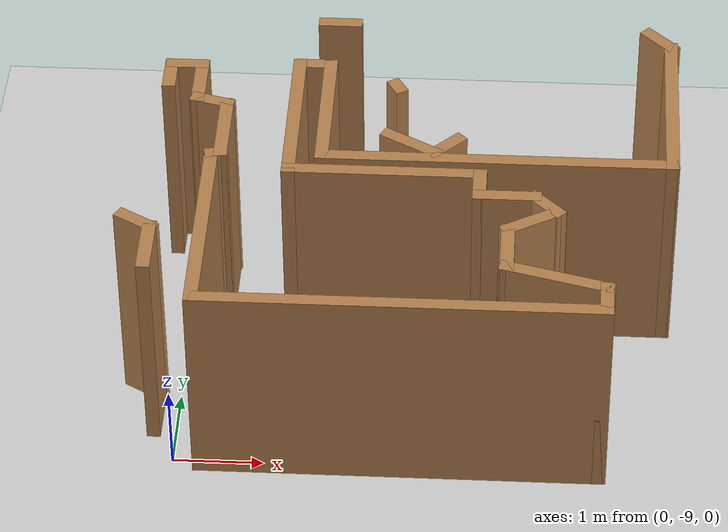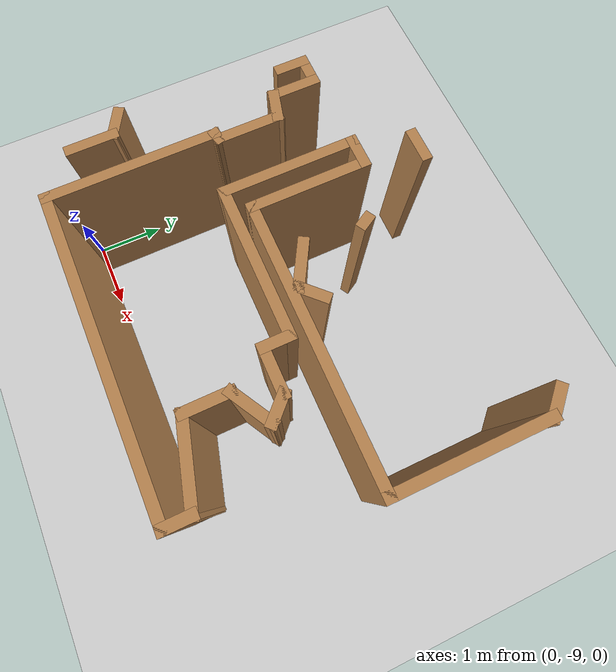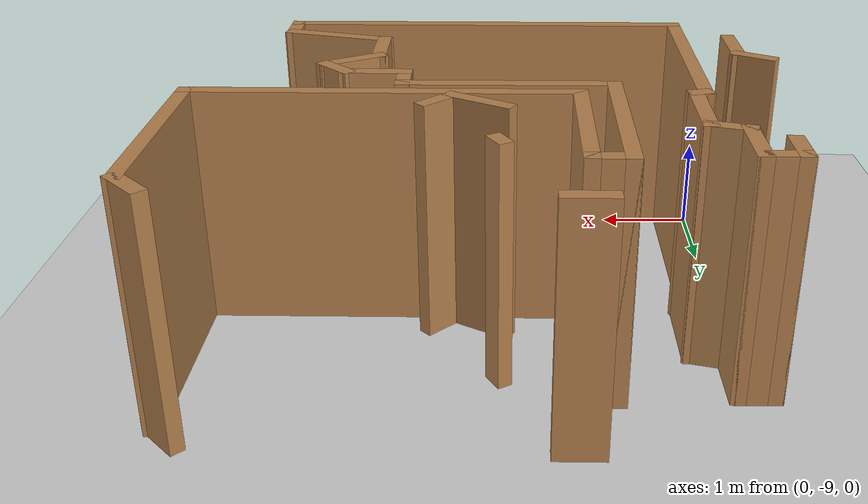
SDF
<sdf version="1.6">
 <world name="default">
  <model name="ground_plane">
   <static>1</static>
   <link name="link">
    <collision name="collision">
     <geometry><plane><normal>0 0 1</normal><size>100 100</size></plane></geometry>
     <surface><friction><ode><mu>100</mu><mu2>50</mu2></ode></friction></surface>
    </collision>
    <visual name="visual">
     <cast_shadows>0</cast_shadows>
     <geometry><plane><normal>0 0 1</normal><size>100 100</size></plane></geometry>
     <material>
      <script><uri>file://media/materials/scripts/gazebo.material</uri><name>Gazebo/Grey</name></script>
     </material>
    </visual>
   </link>
  </model>
  <model name="map_31">
   <link name="Wall_163">
    <pose>1.69247 -5.1413 0 0 0 -1.0472</pose>
    <visual name="Wall_163_Visual">
     <pose>0 0 1.25 0 -0 0</pose>
     <geometry><box><size>0.25 0.15 2.5</size></box></geometry>
     <material>
      <script><uri>file://media/materials/scripts/gazebo.material</uri><name>Gazebo/Wood</name></script>
      <ambient>1 1 1 1</ambient>
      <shader type="pixel"/>
     </material>
     <meta><layer>0</layer></meta>
    </visual>
    <collision name="Wall_163_Collision">
     <pose>0 0 1.25 0 -0 0</pose>
     <geometry><box><size>0.25 0.15 2.5</size></box></geometry>
     <surface>
      <friction>
       <ode><mu>1</mu><mu2>1</mu2><fdir1>0 0 0</fdir1><slip1>0</slip1><slip2>0</slip2></ode>
       <torsional>
        <coefficient>1</coefficient>
        <patch_radius>0</patch_radius>
        <surface_radius>0</surface_radius>
        <use_patch_radius>1</use_patch_radius>
        <ode><slip>0</slip></ode>
       </torsional>
      </friction>
      <bounce><restitution_coefficient>0</restitution_coefficient><threshold>1e+06</threshold></bounce>
      <contact>
       <collide_without_contact>0</collide_without_contact>
       <collide_without_contact_bitmask>1</collide_without_contact_bitmask>
       <collide_bitmask>1</collide_bitmask>
       <ode>
        <soft_cfm>0</soft_cfm>
        <soft_erp>0.2</soft_erp>
        <kp>1e+13</kp>
        <kd>1</kd>
        <max_vel>0.01</max_vel>
        <min_depth>0</min_depth>
       </ode>
       <bullet>
        <split_impulse>1</split_impulse>
        <split_impulse_penetration_threshold>-0.01</split_impulse_penetration_threshold>
        <soft_cfm>0</soft_cfm>
        <soft_erp>0.2</soft_erp>
        <kp>1e+13</kp>
        <kd>1</kd>
       </bullet>
      </contact>
     </surface>
    </collision>
   </link>
   <link name="Wall_165">
    <pose>1.89668 -6.13512 0 0 0 -0.523599</pose>
    <visual name="Wall_165_Visual">
     <pose>0 0 1.25 0 -0 0</pose>
     <geometry><box><size>0.75 0.15 2.5</size></box></geometry>
     <material>
      <script><uri>file://media/materials/scripts/gazebo.material</uri><name>Gazebo/Wood</name></script>
      <ambient>1 1 1 1</ambient>
      <shader type="pixel"/>
     </material>
     <meta><layer>0</layer></meta>
    </visual>
    <collision name="Wall_165_Collision">
     <pose>0 0 1.25 0 -0 0</pose>
     <geometry><box><size>0.75 0.15 2.5</size></box></geometry>
     <surface>
      <friction>
       <ode><mu>1</mu><mu2>1</mu2><fdir1>0 0 0</fdir1><slip1>0</slip1><slip2>0</slip2></ode>
       <torsional>
        <coefficient>1</coefficient>
        <patch_radius>0</patch_radius>
        <surface_radius>0</surface_radius>
        <use_patch_radius>1</use_patch_radius>
        <ode><slip>0</slip></ode>
       </torsional>
      </friction>
      <bounce><restitution_coefficient>0</restitution_coefficient><threshold>1e+06</threshold></bounce>
      <contact>
       <collide_without_contact>0</collide_without_contact>
       <collide_without_contact_bitmask>1</collide_without_contact_bitmask>
       <collide_bitmask>1</collide_bitmask>
       <ode>
        <soft_cfm>0</soft_cfm>
        <soft_erp>0.2</soft_erp>
        <kp>1e+13</kp>
        <kd>1</kd>
        <max_vel>0.01</max_vel>
        <min_depth>0</min_depth>
       </ode>
       <bullet>
        <split_impulse>1</split_impulse>
        <split_impulse_penetration_threshold>-0.01</split_impulse_penetration_threshold>
        <soft_cfm>0</soft_cfm>
        <soft_erp>0.2</soft_erp>
        <kp>1e+13</kp>
        <kd>1</kd>
       </bullet>
      </contact>
     </surface>
    </collision>
   </link>
   <link name="Wall_166">
    <pose>2.28024 -6.16137 0 0 -0 0.785398</pose>
    <visual name="Wall_166_Visual">
     <pose>0 0 1.25 0 -0 0</pose>
     <geometry><box><size>0.5 0.15 2.5</size></box></geometry>
     <material>
      <script><uri>file://media/materials/scripts/gazebo.material</uri><name>Gazebo/Wood</name></script>
      <ambient>1 1 1 1</ambient>
      <shader type="pixel"/>
     </material>
     <meta><layer>0</layer></meta>
    </visual>
    <collision name="Wall_166_Collision">
     <pose>0 0 1.25 0 -0 0</pose>
     <geometry><box><size>0.5 0.15 2.5</size></box></geometry>
     <surface>
      <friction>
       <ode><mu>1</mu><mu2>1</mu2><fdir1>0 0 0</fdir1><slip1>0</slip1><slip2>0</slip2></ode>
       <torsional>
        <coefficient>1</coefficient>
        <patch_radius>0</patch_radius>
        <surface_radius>0</surface_radius>
        <use_patch_radius>1</use_patch_radius>
        <ode><slip>0</slip></ode>
       </torsional>
      </friction>
      <bounce><restitution_coefficient>0</restitution_coefficient><threshold>1e+06</threshold></bounce>
      <contact>
       <collide_without_contact>0</collide_without_contact>
       <collide_without_contact_bitmask>1</collide_without_contact_bitmask>
       <collide_bitmask>1</collide_bitmask>
       <ode>
        <soft_cfm>0</soft_cfm>
        <soft_erp>0.2</soft_erp>
        <kp>1e+13</kp>
        <kd>1</kd>
        <max_vel>0.01</max_vel>
        <min_depth>0</min_depth>
       </ode>
       <bullet>
        <split_impulse>1</split_impulse>
        <split_impulse_penetration_threshold>-0.01</split_impulse_penetration_threshold>
        <soft_cfm>0</soft_cfm>
        <soft_erp>0.2</soft_erp>
        <kp>1e+13</kp>
        <kd>1</kd>
       </bullet>
      </contact>
     </surface>
    </collision>
   </link>
   <link name="Wall_47">
    <pose>-0.840725 -7.95928 0 0 -0 1.5708</pose>
    <visual name="Wall_47_Visual">
     <pose>0 0 1.25 0 -0 0</pose>
     <geometry><box><size>0.75 0.15 2.5</size></box></geometry>
     <material>
      <script><uri>file://media/materials/scripts/gazebo.material</uri><name>Gazebo/Wood</name></script>
      <ambient>1 1 1 1</ambient>
      <shader type="pixel"/>
     </material>
     <meta><layer>0</layer></meta>
    </visual>
    <collision name="Wall_47_Collision">
     <pose>0 0 1.25 0 -0 0</pose>
     <geometry><box><size>0.75 0.15 2.5</size></box></geometry>
     <surface>
      <friction>
       <ode><mu>1</mu><mu2>1</mu2><fdir1>0 0 0</fdir1><slip1>0</slip1><slip2>0</slip2></ode>
       <torsional>
        <coefficient>1</coefficient>
        <patch_radius>0</patch_radius>
        <surface_radius>0</surface_radius>
        <use_patch_radius>1</use_patch_radius>
        <ode><slip>0</slip></ode>
       </torsional>
      </friction>
      <bounce><restitution_coefficient>0</restitution_coefficient><threshold>1e+06</threshold></bounce>
      <contact>
       <collide_without_contact>0</collide_without_contact>
       <collide_without_contact_bitmask>1</collide_without_contact_bitmask>
       <collide_bitmask>1</collide_bitmask>
       <ode>
        <soft_cfm>0</soft_cfm>
        <soft_erp>0.2</soft_erp>
        <kp>1e+13</kp>
        <kd>1</kd>
        <max_vel>0.01</max_vel>
        <min_depth>0</min_depth>
       </ode>
       <bullet>
        <split_impulse>1</split_impulse>
        <split_impulse_penetration_threshold>-0.01</split_impulse_penetration_threshold>
        <soft_cfm>0</soft_cfm>
        <soft_erp>0.2</soft_erp>
        <kp>1e+13</kp>
        <kd>1</kd>
       </bullet>
      </contact>
     </surface>
    </collision>
   </link>
   <link name="Wall_48">
    <pose>-0.99228 -7.57178 0 0 -0 2.61799</pose>
    <visual name="Wall_48_Visual">
     <pose>0 0 1.25 0 -0 0</pose>
     <geometry><box><size>0.5 0.15 2.5</size></box></geometry>
     <material>
      <script><uri>file://media/materials/scripts/gazebo.material</uri><name>Gazebo/Wood</name></script>
      <ambient>1 1 1 1</ambient>
      <shader type="pixel"/>
     </material>
     <meta><layer>0</layer></meta>
    </visual>
    <collision name="Wall_48_Collision">
     <pose>0 0 1.25 0 -0 0</pose>
     <geometry><box><size>0.5 0.15 2.5</size></box></geometry>
     <surface>
      <friction>
       <ode><mu>1</mu><mu2>1</mu2><fdir1>0 0 0</fdir1><slip1>0</slip1><slip2>0</slip2></ode>
       <torsional>
        <coefficient>1</coefficient>
        <patch_radius>0</patch_radius>
        <surface_radius>0</surface_radius>
        <use_patch_radius>1</use_patch_radius>
        <ode><slip>0</slip></ode>
       </torsional>
      </friction>
      <bounce><restitution_coefficient>0</restitution_coefficient><threshold>1e+06</threshold></bounce>
      <contact>
       <collide_without_contact>0</collide_without_contact>
       <collide_without_contact_bitmask>1</collide_without_contact_bitmask>
       <collide_bitmask>1</collide_bitmask>
       <ode>
        <soft_cfm>0</soft_cfm>
        <soft_erp>0.2</soft_erp>
        <kp>1e+13</kp>
        <kd>1</kd>
        <max_vel>0.01</max_vel>
        <min_depth>0</min_depth>
       </ode>
       <bullet>
        <split_impulse>1</split_impulse>
        <split_impulse_penetration_threshold>-0.01</split_impulse_penetration_threshold>
        <soft_cfm>0</soft_cfm>
        <soft_erp>0.2</soft_erp>
        <kp>1e+13</kp>
        <kd>1</kd>
       </bullet>
      </contact>
     </surface>
    </collision>
   </link>
   <link name="Wall_54">
    <pose>-0.881908 -5.01869 0 0 -0 1.5708</pose>
    <visual name="Wall_54_Visual">
     <pose>0 0 1.25 0 -0 0</pose>
     <geometry><box><size>0.5 0.15 2.5</size></box></geometry>
     <material>
      <script><uri>file://media/materials/scripts/gazebo.material</uri><name>Gazebo/Wood</name></script>
      <ambient>1 1 1 1</ambient>
      <shader type="pixel"/>
     </material>
     <meta><layer>0</layer></meta>
    </visual>
    <collision name="Wall_54_Collision">
     <pose>0 0 1.25 0 -0 0</pose>
     <geometry><box><size>0.5 0.15 2.5</size></box></geometry>
     <surface>
      <friction>
       <ode><mu>1</mu><mu2>1</mu2><fdir1>0 0 0</fdir1><slip1>0</slip1><slip2>0</slip2></ode>
       <torsional>
        <coefficient>1</coefficient>
        <patch_radius>0</patch_radius>
        <surface_radius>0</surface_radius>
        <use_patch_radius>1</use_patch_radius>
        <ode><slip>0</slip></ode>
       </torsional>
      </friction>
      <bounce><restitution_coefficient>0</restitution_coefficient><threshold>1e+06</threshold></bounce>
      <contact>
       <collide_without_contact>0</collide_without_contact>
       <collide_without_contact_bitmask>1</collide_without_contact_bitmask>
       <collide_bitmask>1</collide_bitmask>
       <ode>
        <soft_cfm>0</soft_cfm>
        <soft_erp>0.2</soft_erp>
        <kp>1e+13</kp>
        <kd>1</kd>
        <max_vel>0.01</max_vel>
        <min_depth>0</min_depth>
       </ode>
       <bullet>
        <split_impulse>1</split_impulse>
        <split_impulse_penetration_threshold>-0.01</split_impulse_penetration_threshold>
        <soft_cfm>0</soft_cfm>
        <soft_erp>0.2</soft_erp>
        <kp>1e+13</kp>
        <kd>1</kd>
       </bullet>
      </contact>
     </surface>
    </collision>
   </link>
   <link name="Wall_55">
    <pose>-0.706908 -4.84369 0 0 -0 0</pose>
    <visual name="Wall_55_Visual">
     <pose>0 0 1.25 0 -0 0</pose>
     <geometry><box><size>0.5 0.15 2.5</size></box></geometry>
     <material>
      <script><uri>file://media/materials/scripts/gazebo.material</uri><name>Gazebo/Wood</name></script>
      <ambient>1 1 1 1</ambient>
      <shader type="pixel"/>
     </material>
     <meta><layer>0</layer></meta>
    </visual>
    <collision name="Wall_55_Collision">
     <pose>0 0 1.25 0 -0 0</pose>
     <geometry><box><size>0.5 0.15 2.5</size></box></geometry>
     <surface>
      <friction>
       <ode><mu>1</mu><mu2>1</mu2><fdir1>0 0 0</fdir1><slip1>0</slip1><slip2>0</slip2></ode>
       <torsional>
        <coefficient>1</coefficient>
        <patch_radius>0</patch_radius>
        <surface_radius>0</surface_radius>
        <use_patch_radius>1</use_patch_radius>
        <ode><slip>0</slip></ode>
       </torsional>
      </friction>
      <bounce><restitution_coefficient>0</restitution_coefficient><threshold>1e+06</threshold></bounce>
      <contact>
       <collide_without_contact>0</collide_without_contact>
       <collide_without_contact_bitmask>1</collide_without_contact_bitmask>
       <collide_bitmask>1</collide_bitmask>
       <ode>
        <soft_cfm>0</soft_cfm>
        <soft_erp>0.2</soft_erp>
        <kp>1e+13</kp>
        <kd>1</kd>
        <max_vel>0.01</max_vel>
        <min_depth>0</min_depth>
       </ode>
       <bullet>
        <split_impulse>1</split_impulse>
        <split_impulse_penetration_threshold>-0.01</split_impulse_penetration_threshold>
        <soft_cfm>0</soft_cfm>
        <soft_erp>0.2</soft_erp>
        <kp>1e+13</kp>
        <kd>1</kd>
       </bullet>
      </contact>
     </surface>
    </collision>
   </link>
   <link name="Wall_56">
    <pose>-0.531908 -5.14369 0 0 0 -1.5708</pose>
    <visual name="Wall_56_Visual">
     <pose>0 0 1.25 0 -0 0</pose>
     <geometry><box><size>0.75 0.15 2.5</size></box></geometry>
     <material>
      <script><uri>file://media/materials/scripts/gazebo.material</uri><name>Gazebo/Wood</name></script>
      <ambient>1 1 1 1</ambient>
      <shader type="pixel"/>
     </material>
     <meta><layer>0</layer></meta>
    </visual>
    <collision name="Wall_56_Collision">
     <pose>0 0 1.25 0 -0 0</pose>
     <geometry><box><size>0.75 0.15 2.5</size></box></geometry>
     <surface>
      <friction>
       <ode><mu>1</mu><mu2>1</mu2><fdir1>0 0 0</fdir1><slip1>0</slip1><slip2>0</slip2></ode>
       <torsional>
        <coefficient>1</coefficient>
        <patch_radius>0</patch_radius>
        <surface_radius>0</surface_radius>
        <use_patch_radius>1</use_patch_radius>
        <ode><slip>0</slip></ode>
       </torsional>
      </friction>
      <bounce><restitution_coefficient>0</restitution_coefficient><threshold>1e+06</threshold></bounce>
      <contact>
       <collide_without_contact>0</collide_without_contact>
       <collide_without_contact_bitmask>1</collide_without_contact_bitmask>
       <collide_bitmask>1</collide_bitmask>
       <ode>
        <soft_cfm>0</soft_cfm>
        <soft_erp>0.2</soft_erp>
        <kp>1e+13</kp>
        <kd>1</kd>
        <max_vel>0.01</max_vel>
        <min_depth>0</min_depth>
       </ode>
       <bullet>
        <split_impulse>1</split_impulse>
        <split_impulse_penetration_threshold>-0.01</split_impulse_penetration_threshold>
        <soft_cfm>0</soft_cfm>
        <soft_erp>0.2</soft_erp>
        <kp>1e+13</kp>
        <kd>1</kd>
       </bullet>
      </contact>
     </surface>
    </collision>
   </link>
   <link name="Wall_57">
    <pose>-0.362871 -5.48898 0 0 0 -0.261799</pose>
    <visual name="Wall_57_Visual">
     <pose>0 0 1.25 0 -0 0</pose>
     <geometry><box><size>0.5 0.15 2.5</size></box></geometry>
     <material>
      <script><uri>file://media/materials/scripts/gazebo.material</uri><name>Gazebo/Wood</name></script>
      <ambient>1 1 1 1</ambient>
      <shader type="pixel"/>
     </material>
     <meta><layer>0</layer></meta>
    </visual>
    <collision name="Wall_57_Collision">
     <pose>0 0 1.25 0 -0 0</pose>
     <geometry><box><size>0.5 0.15 2.5</size></box></geometry>
     <surface>
      <friction>
       <ode><mu>1</mu><mu2>1</mu2><fdir1>0 0 0</fdir1><slip1>0</slip1><slip2>0</slip2></ode>
       <torsional>
        <coefficient>1</coefficient>
        <patch_radius>0</patch_radius>
        <surface_radius>0</surface_radius>
        <use_patch_radius>1</use_patch_radius>
        <ode><slip>0</slip></ode>
       </torsional>
      </friction>
      <bounce><restitution_coefficient>0</restitution_coefficient><threshold>1e+06</threshold></bounce>
      <contact>
       <collide_without_contact>0</collide_without_contact>
       <collide_without_contact_bitmask>1</collide_without_contact_bitmask>
       <collide_bitmask>1</collide_bitmask>
       <ode>
        <soft_cfm>0</soft_cfm>
        <soft_erp>0.2</soft_erp>
        <kp>1e+13</kp>
        <kd>1</kd>
        <max_vel>0.01</max_vel>
        <min_depth>0</min_depth>
       </ode>
       <bullet>
        <split_impulse>1</split_impulse>
        <split_impulse_penetration_threshold>-0.01</split_impulse_penetration_threshold>
        <soft_cfm>0</soft_cfm>
        <soft_erp>0.2</soft_erp>
        <kp>1e+13</kp>
        <kd>1</kd>
       </bullet>
      </contact>
     </surface>
    </collision>
   </link>
   <link name="Wall_58">
    <pose>-0.193834 -5.95928 0 0 0 -1.5708</pose>
    <visual name="Wall_58_Visual">
     <pose>0 0 1.25 0 -0 0</pose>
     <geometry><box><size>1 0.15 2.5</size></box></geometry>
     <material>
      <script><uri>file://media/materials/scripts/gazebo.material</uri><name>Gazebo/Wood</name></script>
      <ambient>1 1 1 1</ambient>
      <shader type="pixel"/>
     </material>
     <meta><layer>0</layer></meta>
    </visual>
    <collision name="Wall_58_Collision">
     <pose>0 0 1.25 0 -0 0</pose>
     <geometry><box><size>1 0.15 2.5</size></box></geometry>
     <surface>
      <friction>
       <ode><mu>1</mu><mu2>1</mu2><fdir1>0 0 0</fdir1><slip1>0</slip1><slip2>0</slip2></ode>
       <torsional>
        <coefficient>1</coefficient>
        <patch_radius>0</patch_radius>
        <surface_radius>0</surface_radius>
        <use_patch_radius>1</use_patch_radius>
        <ode><slip>0</slip></ode>
       </torsional>
      </friction>
      <bounce><restitution_coefficient>0</restitution_coefficient><threshold>1e+06</threshold></bounce>
      <contact>
       <collide_without_contact>0</collide_without_contact>
       <collide_without_contact_bitmask>1</collide_without_contact_bitmask>
       <collide_bitmask>1</collide_bitmask>
       <ode>
        <soft_cfm>0</soft_cfm>
        <soft_erp>0.2</soft_erp>
        <kp>1e+13</kp>
        <kd>1</kd>
        <max_vel>0.01</max_vel>
        <min_depth>0</min_depth>
       </ode>
       <bullet>
        <split_impulse>1</split_impulse>
        <split_impulse_penetration_threshold>-0.01</split_impulse_penetration_threshold>
        <soft_cfm>0</soft_cfm>
        <soft_erp>0.2</soft_erp>
        <kp>1e+13</kp>
        <kd>1</kd>
       </bullet>
      </contact>
     </surface>
    </collision>
   </link>
   <link name="Wall_59">
    <pose>-0.242131 -6.39722 0 0 0 -2.87979</pose>
    <visual name="Wall_59_Visual">
     <pose>0 0 1.25 0 -0 0</pose>
     <geometry><box><size>0.25 0.15 2.5</size></box></geometry>
     <material>
      <script><uri>file://media/materials/scripts/gazebo.material</uri><name>Gazebo/Wood</name></script>
      <ambient>1 1 1 1</ambient>
      <shader type="pixel"/>
     </material>
     <meta><layer>0</layer></meta>
    </visual>
    <collision name="Wall_59_Collision">
     <pose>0 0 1.25 0 -0 0</pose>
     <geometry><box><size>0.25 0.15 2.5</size></box></geometry>
     <surface>
      <friction>
       <ode><mu>1</mu><mu2>1</mu2><fdir1>0 0 0</fdir1><slip1>0</slip1><slip2>0</slip2></ode>
       <torsional>
        <coefficient>1</coefficient>
        <patch_radius>0</patch_radius>
        <surface_radius>0</surface_radius>
        <use_patch_radius>1</use_patch_radius>
        <ode><slip>0</slip></ode>
       </torsional>
      </friction>
      <bounce><restitution_coefficient>0</restitution_coefficient><threshold>1e+06</threshold></bounce>
      <contact>
       <collide_without_contact>0</collide_without_contact>
       <collide_without_contact_bitmask>1</collide_without_contact_bitmask>
       <collide_bitmask>1</collide_bitmask>
       <ode>
        <soft_cfm>0</soft_cfm>
        <soft_erp>0.2</soft_erp>
        <kp>1e+13</kp>
        <kd>1</kd>
        <max_vel>0.01</max_vel>
        <min_depth>0</min_depth>
       </ode>
       <bullet>
        <split_impulse>1</split_impulse>
        <split_impulse_penetration_threshold>-0.01</split_impulse_penetration_threshold>
        <soft_cfm>0</soft_cfm>
        <soft_erp>0.2</soft_erp>
        <kp>1e+13</kp>
        <kd>1</kd>
       </bullet>
      </contact>
     </surface>
    </collision>
   </link>
   <link name="Wall_60">
    <pose>-0.290427 -7.58516 0 0 0 -1.5708</pose>
    <visual name="Wall_60_Visual">
     <pose>0 0 1.25 0 -0 0</pose>
     <geometry><box><size>2.5 0.15 2.5</size></box></geometry>
     <material>
      <script><uri>file://media/materials/scripts/gazebo.material</uri><name>Gazebo/Wood</name></script>
      <ambient>1 1 1 1</ambient>
      <shader type="pixel"/>
     </material>
     <meta><layer>0</layer></meta>
    </visual>
    <collision name="Wall_60_Collision">
     <pose>0 0 1.25 0 -0 0</pose>
     <geometry><box><size>2.5 0.15 2.5</size></box></geometry>
     <surface>
      <friction>
       <ode><mu>1</mu><mu2>1</mu2><fdir1>0 0 0</fdir1><slip1>0</slip1><slip2>0</slip2></ode>
       <torsional>
        <coefficient>1</coefficient>
        <patch_radius>0</patch_radius>
        <surface_radius>0</surface_radius>
        <use_patch_radius>1</use_patch_radius>
        <ode><slip>0</slip></ode>
       </torsional>
      </friction>
      <bounce><restitution_coefficient>0</restitution_coefficient><threshold>1e+06</threshold></bounce>
      <contact>
       <collide_without_contact>0</collide_without_contact>
       <collide_without_contact_bitmask>1</collide_without_contact_bitmask>
       <collide_bitmask>1</collide_bitmask>
       <ode>
        <soft_cfm>0</soft_cfm>
        <soft_erp>0.2</soft_erp>
        <kp>1e+13</kp>
        <kd>1</kd>
        <max_vel>0.01</max_vel>
        <min_depth>0</min_depth>
       </ode>
       <bullet>
        <split_impulse>1</split_impulse>
        <split_impulse_penetration_threshold>-0.01</split_impulse_penetration_threshold>
        <soft_cfm>0</soft_cfm>
        <soft_erp>0.2</soft_erp>
        <kp>1e+13</kp>
        <kd>1</kd>
       </bullet>
      </contact>
     </surface>
    </collision>
   </link>
   <link name="Wall_61">
    <pose>1.88457 -8.76016 0 0 -0 0</pose>
    <visual name="Wall_61_Visual">
     <pose>0 0 1.25 0 -0 0</pose>
     <geometry><box><size>4.5 0.15 2.5</size></box></geometry>
     <material>
      <script><uri>file://media/materials/scripts/gazebo.material</uri><name>Gazebo/Wood</name></script>
      <ambient>1 1 1 1</ambient>
      <shader type="pixel"/>
     </material>
     <meta><layer>0</layer></meta>
    </visual>
    <collision name="Wall_61_Collision">
     <pose>0 0 1.25 0 -0 0</pose>
     <geometry><box><size>4.5 0.15 2.5</size></box></geometry>
     <surface>
      <friction>
       <ode><mu>1</mu><mu2>1</mu2><fdir1>0 0 0</fdir1><slip1>0</slip1><slip2>0</slip2></ode>
       <torsional>
        <coefficient>1</coefficient>
        <patch_radius>0</patch_radius>
        <surface_radius>0</surface_radius>
        <use_patch_radius>1</use_patch_radius>
        <ode><slip>0</slip></ode>
       </torsional>
      </friction>
      <bounce><restitution_coefficient>0</restitution_coefficient><threshold>1e+06</threshold></bounce>
      <contact>
       <collide_without_contact>0</collide_without_contact>
       <collide_without_contact_bitmask>1</collide_without_contact_bitmask>
       <collide_bitmask>1</collide_bitmask>
       <ode>
        <soft_cfm>0</soft_cfm>
        <soft_erp>0.2</soft_erp>
        <kp>1e+13</kp>
        <kd>1</kd>
        <max_vel>0.01</max_vel>
        <min_depth>0</min_depth>
       </ode>
       <bullet>
        <split_impulse>1</split_impulse>
        <split_impulse_penetration_threshold>-0.01</split_impulse_penetration_threshold>
        <soft_cfm>0</soft_cfm>
        <soft_erp>0.2</soft_erp>
        <kp>1e+13</kp>
        <kd>1</kd>
       </bullet>
      </contact>
     </surface>
    </collision>
   </link>
   <link name="Wall_62">
    <pose>4.05957 -8.58516 0 0 -0 1.5708</pose>
    <visual name="Wall_62_Visual">
     <pose>0 0 1.25 0 -0 0</pose>
     <geometry><box><size>0.5 0.15 2.5</size></box></geometry>
     <material>
      <script><uri>file://media/materials/scripts/gazebo.material</uri><name>Gazebo/Wood</name></script>
      <ambient>1 1 1 1</ambient>
      <shader type="pixel"/>
     </material>
     <meta><layer>0</layer></meta>
    </visual>
    <collision name="Wall_62_Collision">
     <pose>0 0 1.25 0 -0 0</pose>
     <geometry><box><size>0.5 0.15 2.5</size></box></geometry>
     <surface>
      <friction>
       <ode><mu>1</mu><mu2>1</mu2><fdir1>0 0 0</fdir1><slip1>0</slip1><slip2>0</slip2></ode>
       <torsional>
        <coefficient>1</coefficient>
        <patch_radius>0</patch_radius>
        <surface_radius>0</surface_radius>
        <use_patch_radius>1</use_patch_radius>
        <ode><slip>0</slip></ode>
       </torsional>
      </friction>
      <bounce><restitution_coefficient>0</restitution_coefficient><threshold>1e+06</threshold></bounce>
      <contact>
       <collide_without_contact>0</collide_without_contact>
       <collide_without_contact_bitmask>1</collide_without_contact_bitmask>
       <collide_bitmask>1</collide_bitmask>
       <ode>
        <soft_cfm>0</soft_cfm>
        <soft_erp>0.2</soft_erp>
        <kp>1e+13</kp>
        <kd>1</kd>
        <max_vel>0.01</max_vel>
        <min_depth>0</min_depth>
       </ode>
       <bullet>
        <split_impulse>1</split_impulse>
        <split_impulse_penetration_threshold>-0.01</split_impulse_penetration_threshold>
        <soft_cfm>0</soft_cfm>
        <soft_erp>0.2</soft_erp>
        <kp>1e+13</kp>
        <kd>1</kd>
       </bullet>
      </contact>
     </surface>
    </collision>
   </link>
   <link name="Wall_63">
    <pose>3.52831 -8.26781 0 0 -0 2.87979</pose>
    <visual name="Wall_63_Visual">
     <pose>0 0 1.25 0 -0 0</pose>
     <geometry><box><size>1.25 0.15 2.5</size></box></geometry>
     <material>
      <script><uri>file://media/materials/scripts/gazebo.material</uri><name>Gazebo/Wood</name></script>
      <ambient>1 1 1 1</ambient>
      <shader type="pixel"/>
     </material>
     <meta><layer>0</layer></meta>
    </visual>
    <collision name="Wall_63_Collision">
     <pose>0 0 1.25 0 -0 0</pose>
     <geometry><box><size>1.25 0.15 2.5</size></box></geometry>
     <surface>
      <friction>
       <ode><mu>1</mu><mu2>1</mu2><fdir1>0 0 0</fdir1><slip1>0</slip1><slip2>0</slip2></ode>
       <torsional>
        <coefficient>1</coefficient>
        <patch_radius>0</patch_radius>
        <surface_radius>0</surface_radius>
        <use_patch_radius>1</use_patch_radius>
        <ode><slip>0</slip></ode>
       </torsional>
      </friction>
      <bounce><restitution_coefficient>0</restitution_coefficient><threshold>1e+06</threshold></bounce>
      <contact>
       <collide_without_contact>0</collide_without_contact>
       <collide_without_contact_bitmask>1</collide_without_contact_bitmask>
       <collide_bitmask>1</collide_bitmask>
       <ode>
        <soft_cfm>0</soft_cfm>
        <soft_erp>0.2</soft_erp>
        <kp>1e+13</kp>
        <kd>1</kd>
        <max_vel>0.01</max_vel>
        <min_depth>0</min_depth>
       </ode>
       <bullet>
        <split_impulse>1</split_impulse>
        <split_impulse_penetration_threshold>-0.01</split_impulse_penetration_threshold>
        <soft_cfm>0</soft_cfm>
        <soft_erp>0.2</soft_erp>
        <kp>1e+13</kp>
        <kd>1</kd>
       </bullet>
      </contact>
     </surface>
    </collision>
   </link>
   <link name="Wall_64">
    <pose>2.99706 -7.82546 0 0 -0 1.5708</pose>
    <visual name="Wall_64_Visual">
     <pose>0 0 1.25 0 -0 0</pose>
     <geometry><box><size>0.75 0.15 2.5</size></box></geometry>
     <material>
      <script><uri>file://media/materials/scripts/gazebo.material</uri><name>Gazebo/Wood</name></script>
      <ambient>1 1 1 1</ambient>
      <shader type="pixel"/>
     </material>
     <meta><layer>0</layer></meta>
    </visual>
    <collision name="Wall_64_Collision">
     <pose>0 0 1.25 0 -0 0</pose>
     <geometry><box><size>0.75 0.15 2.5</size></box></geometry>
     <surface>
      <friction>
       <ode><mu>1</mu><mu2>1</mu2><fdir1>0 0 0</fdir1><slip1>0</slip1><slip2>0</slip2></ode>
       <torsional>
        <coefficient>1</coefficient>
        <patch_radius>0</patch_radius>
        <surface_radius>0</surface_radius>
        <use_patch_radius>1</use_patch_radius>
        <ode><slip>0</slip></ode>
       </torsional>
      </friction>
      <bounce><restitution_coefficient>0</restitution_coefficient><threshold>1e+06</threshold></bounce>
      <contact>
       <collide_without_contact>0</collide_without_contact>
       <collide_without_contact_bitmask>1</collide_without_contact_bitmask>
       <collide_bitmask>1</collide_bitmask>
       <ode>
        <soft_cfm>0</soft_cfm>
        <soft_erp>0.2</soft_erp>
        <kp>1e+13</kp>
        <kd>1</kd>
        <max_vel>0.01</max_vel>
        <min_depth>0</min_depth>
       </ode>
       <bullet>
        <split_impulse>1</split_impulse>
        <split_impulse_penetration_threshold>-0.01</split_impulse_penetration_threshold>
        <soft_cfm>0</soft_cfm>
        <soft_erp>0.2</soft_erp>
        <kp>1e+13</kp>
        <kd>1</kd>
       </bullet>
      </contact>
     </surface>
    </collision>
   </link>
   <link name="Wall_65">
    <pose>3.25686 -7.37546 0 0 -0 0.523599</pose>
    <visual name="Wall_65_Visual">
     <pose>0 0 1.25 0 -0 0</pose>
     <geometry><box><size>0.75 0.15 2.5</size></box></geometry>
     <material>
      <script><uri>file://media/materials/scripts/gazebo.material</uri><name>Gazebo/Wood</name></script>
      <ambient>1 1 1 1</ambient>
      <shader type="pixel"/>
     </material>
     <meta><layer>0</layer></meta>
    </visual>
    <collision name="Wall_65_Collision">
     <pose>0 0 1.25 0 -0 0</pose>
     <geometry><box><size>0.75 0.15 2.5</size></box></geometry>
     <surface>
      <friction>
       <ode><mu>1</mu><mu2>1</mu2><fdir1>0 0 0</fdir1><slip1>0</slip1><slip2>0</slip2></ode>
       <torsional>
        <coefficient>1</coefficient>
        <patch_radius>0</patch_radius>
        <surface_radius>0</surface_radius>
        <use_patch_radius>1</use_patch_radius>
        <ode><slip>0</slip></ode>
       </torsional>
      </friction>
      <bounce><restitution_coefficient>0</restitution_coefficient><threshold>1e+06</threshold></bounce>
      <contact>
       <collide_without_contact>0</collide_without_contact>
       <collide_without_contact_bitmask>1</collide_without_contact_bitmask>
       <collide_bitmask>1</collide_bitmask>
       <ode>
        <soft_cfm>0</soft_cfm>
        <soft_erp>0.2</soft_erp>
        <kp>1e+13</kp>
        <kd>1</kd>
        <max_vel>0.01</max_vel>
        <min_depth>0</min_depth>
       </ode>
       <bullet>
        <split_impulse>1</split_impulse>
        <split_impulse_penetration_threshold>-0.01</split_impulse_penetration_threshold>
        <soft_cfm>0</soft_cfm>
        <soft_erp>0.2</soft_erp>
        <kp>1e+13</kp>
        <kd>1</kd>
       </bullet>
      </contact>
     </surface>
    </collision>
   </link>
   <link name="Wall_66">
    <pose>3.39293 -7.10171 0 0 -0 2.35619</pose>
    <visual name="Wall_66_Visual">
     <pose>0 0 1.25 0 -0 0</pose>
     <geometry><box><size>0.5 0.15 2.5</size></box></geometry>
     <material>
      <script><uri>file://media/materials/scripts/gazebo.material</uri><name>Gazebo/Wood</name></script>
      <ambient>1 1 1 1</ambient>
      <shader type="pixel"/>
     </material>
     <meta><layer>0</layer></meta>
    </visual>
    <collision name="Wall_66_Collision">
     <pose>0 0 1.25 0 -0 0</pose>
     <geometry><box><size>0.5 0.15 2.5</size></box></geometry>
     <surface>
      <friction>
       <ode><mu>1</mu><mu2>1</mu2><fdir1>0 0 0</fdir1><slip1>0</slip1><slip2>0</slip2></ode>
       <torsional>
        <coefficient>1</coefficient>
        <patch_radius>0</patch_radius>
        <surface_radius>0</surface_radius>
        <use_patch_radius>1</use_patch_radius>
        <ode><slip>0</slip></ode>
       </torsional>
      </friction>
      <bounce><restitution_coefficient>0</restitution_coefficient><threshold>1e+06</threshold></bounce>
      <contact>
       <collide_without_contact>0</collide_without_contact>
       <collide_without_contact_bitmask>1</collide_without_contact_bitmask>
       <collide_bitmask>1</collide_bitmask>
       <ode>
        <soft_cfm>0</soft_cfm>
        <soft_erp>0.2</soft_erp>
        <kp>1e+13</kp>
        <kd>1</kd>
        <max_vel>0.01</max_vel>
        <min_depth>0</min_depth>
       </ode>
       <bullet>
        <split_impulse>1</split_impulse>
        <split_impulse_penetration_threshold>-0.01</split_impulse_penetration_threshold>
        <soft_cfm>0</soft_cfm>
        <soft_erp>0.2</soft_erp>
        <kp>1e+13</kp>
        <kd>1</kd>
       </bullet>
      </contact>
     </surface>
    </collision>
   </link>
   <link name="Wall_67">
    <pose>2.96918 -6.97797 0 0 -0 3.14159</pose>
    <visual name="Wall_67_Visual">
     <pose>0 0 1.25 0 -0 0</pose>
     <geometry><box><size>0.75 0.15 2.5</size></box></geometry>
     <material>
      <script><uri>file://media/materials/scripts/gazebo.material</uri><name>Gazebo/Wood</name></script>
      <ambient>1 1 1 1</ambient>
      <shader type="pixel"/>
     </material>
     <meta><layer>0</layer></meta>
    </visual>
    <collision name="Wall_67_Collision">
     <pose>0 0 1.25 0 -0 0</pose>
     <geometry><box><size>0.75 0.15 2.5</size></box></geometry>
     <surface>
      <friction>
       <ode><mu>1</mu><mu2>1</mu2><fdir1>0 0 0</fdir1><slip1>0</slip1><slip2>0</slip2></ode>
       <torsional>
        <coefficient>1</coefficient>
        <patch_radius>0</patch_radius>
        <surface_radius>0</surface_radius>
        <use_patch_radius>1</use_patch_radius>
        <ode><slip>0</slip></ode>
       </torsional>
      </friction>
      <bounce><restitution_coefficient>0</restitution_coefficient><threshold>1e+06</threshold></bounce>
      <contact>
       <collide_without_contact>0</collide_without_contact>
       <collide_without_contact_bitmask>1</collide_without_contact_bitmask>
       <collide_bitmask>1</collide_bitmask>
       <ode>
        <soft_cfm>0</soft_cfm>
        <soft_erp>0.2</soft_erp>
        <kp>1e+13</kp>
        <kd>1</kd>
        <max_vel>0.01</max_vel>
        <min_depth>0</min_depth>
       </ode>
       <bullet>
        <split_impulse>1</split_impulse>
        <split_impulse_penetration_threshold>-0.01</split_impulse_penetration_threshold>
        <soft_cfm>0</soft_cfm>
        <soft_erp>0.2</soft_erp>
        <kp>1e+13</kp>
        <kd>1</kd>
       </bullet>
      </contact>
     </surface>
    </collision>
   </link>
   <link name="Wall_70">
    <pose>2.66918 -6.80297 0 0 -0 1.5708</pose>
    <visual name="Wall_70_Visual">
     <pose>0 0 1.25 0 -0 0</pose>
     <geometry><box><size>0.5 0.15 2.5</size></box></geometry>
     <material>
      <script><uri>file://media/materials/scripts/gazebo.material</uri><name>Gazebo/Wood</name></script>
      <ambient>1 1 1 1</ambient>
      <shader type="pixel"/>
     </material>
     <meta><layer>0</layer></meta>
    </visual>
    <collision name="Wall_70_Collision">
     <pose>0 0 1.25 0 -0 0</pose>
     <geometry><box><size>0.5 0.15 2.5</size></box></geometry>
     <surface>
      <friction>
       <ode><mu>1</mu><mu2>1</mu2><fdir1>0 0 0</fdir1><slip1>0</slip1><slip2>0</slip2></ode>
       <torsional>
        <coefficient>1</coefficient>
        <patch_radius>0</patch_radius>
        <surface_radius>0</surface_radius>
        <use_patch_radius>1</use_patch_radius>
        <ode><slip>0</slip></ode>
       </torsional>
      </friction>
      <bounce><restitution_coefficient>0</restitution_coefficient><threshold>1e+06</threshold></bounce>
      <contact>
       <collide_without_contact>0</collide_without_contact>
       <collide_without_contact_bitmask>1</collide_without_contact_bitmask>
       <collide_bitmask>1</collide_bitmask>
       <ode>
        <soft_cfm>0</soft_cfm>
        <soft_erp>0.2</soft_erp>
        <kp>1e+13</kp>
        <kd>1</kd>
        <max_vel>0.01</max_vel>
        <min_depth>0</min_depth>
       </ode>
       <bullet>
        <split_impulse>1</split_impulse>
        <split_impulse_penetration_threshold>-0.01</split_impulse_penetration_threshold>
        <soft_cfm>0</soft_cfm>
        <soft_erp>0.2</soft_erp>
        <kp>1e+13</kp>
        <kd>1</kd>
       </bullet>
      </contact>
     </surface>
    </collision>
   </link>
   <link name="Wall_71">
    <pose>1.61918 -6.62797 0 0 -0 3.14159</pose>
    <visual name="Wall_71_Visual">
     <pose>0 0 1.25 0 -0 0</pose>
     <geometry><box><size>2.25 0.15 2.5</size></box></geometry>
     <material>
      <script><uri>file://media/materials/scripts/gazebo.material</uri><name>Gazebo/Wood</name></script>
      <ambient>1 1 1 1</ambient>
      <shader type="pixel"/>
     </material>
     <meta><layer>0</layer></meta>
    </visual>
    <collision name="Wall_71_Collision">
     <pose>0 0 1.25 0 -0 0</pose>
     <geometry><box><size>2.25 0.15 2.5</size></box></geometry>
     <surface>
      <friction>
       <ode><mu>1</mu><mu2>1</mu2><fdir1>0 0 0</fdir1><slip1>0</slip1><slip2>0</slip2></ode>
       <torsional>
        <coefficient>1</coefficient>
        <patch_radius>0</patch_radius>
        <surface_radius>0</surface_radius>
        <use_patch_radius>1</use_patch_radius>
        <ode><slip>0</slip></ode>
       </torsional>
      </friction>
      <bounce><restitution_coefficient>0</restitution_coefficient><threshold>1e+06</threshold></bounce>
      <contact>
       <collide_without_contact>0</collide_without_contact>
       <collide_without_contact_bitmask>1</collide_without_contact_bitmask>
       <collide_bitmask>1</collide_bitmask>
       <ode>
        <soft_cfm>0</soft_cfm>
        <soft_erp>0.2</soft_erp>
        <kp>1e+13</kp>
        <kd>1</kd>
        <max_vel>0.01</max_vel>
        <min_depth>0</min_depth>
       </ode>
       <bullet>
        <split_impulse>1</split_impulse>
        <split_impulse_penetration_threshold>-0.01</split_impulse_penetration_threshold>
        <soft_cfm>0</soft_cfm>
        <soft_erp>0.2</soft_erp>
        <kp>1e+13</kp>
        <kd>1</kd>
       </bullet>
      </contact>
     </surface>
    </collision>
   </link>
   <link name="Wall_72">
    <pose>0.569183 -5.70297 0 0 -0 1.5708</pose>
    <visual name="Wall_72_Visual">
     <pose>0 0 1.25 0 -0 0</pose>
     <geometry><box><size>2 0.15 2.5</size></box></geometry>
     <material>
      <script><uri>file://media/materials/scripts/gazebo.material</uri><name>Gazebo/Wood</name></script>
      <ambient>1 1 1 1</ambient>
      <shader type="pixel"/>
     </material>
     <meta><layer>0</layer></meta>
    </visual>
    <collision name="Wall_72_Collision">
     <pose>0 0 1.25 0 -0 0</pose>
     <geometry><box><size>2 0.15 2.5</size></box></geometry>
     <surface>
      <friction>
       <ode><mu>1</mu><mu2>1</mu2><fdir1>0 0 0</fdir1><slip1>0</slip1><slip2>0</slip2></ode>
       <torsional>
        <coefficient>1</coefficient>
        <patch_radius>0</patch_radius>
        <surface_radius>0</surface_radius>
        <use_patch_radius>1</use_patch_radius>
        <ode><slip>0</slip></ode>
       </torsional>
      </friction>
      <bounce><restitution_coefficient>0</restitution_coefficient><threshold>1e+06</threshold></bounce>
      <contact>
       <collide_without_contact>0</collide_without_contact>
       <collide_without_contact_bitmask>1</collide_without_contact_bitmask>
       <collide_bitmask>1</collide_bitmask>
       <ode>
        <soft_cfm>0</soft_cfm>
        <soft_erp>0.2</soft_erp>
        <kp>1e+13</kp>
        <kd>1</kd>
        <max_vel>0.01</max_vel>
        <min_depth>0</min_depth>
       </ode>
       <bullet>
        <split_impulse>1</split_impulse>
        <split_impulse_penetration_threshold>-0.01</split_impulse_penetration_threshold>
        <soft_cfm>0</soft_cfm>
        <soft_erp>0.2</soft_erp>
        <kp>1e+13</kp>
        <kd>1</kd>
       </bullet>
      </contact>
     </surface>
    </collision>
   </link>
   <link name="Wall_73">
    <pose>0.744183 -4.77797 0 0 -0 0</pose>
    <visual name="Wall_73_Visual">
     <pose>0 0 1.25 0 -0 0</pose>
     <geometry><box><size>0.5 0.15 2.5</size></box></geometry>
     <material>
      <script><uri>file://media/materials/scripts/gazebo.material</uri><name>Gazebo/Wood</name></script>
      <ambient>1 1 1 1</ambient>
      <shader type="pixel"/>
     </material>
     <meta><layer>0</layer></meta>
    </visual>
    <collision name="Wall_73_Collision">
     <pose>0 0 1.25 0 -0 0</pose>
     <geometry><box><size>0.5 0.15 2.5</size></box></geometry>
     <surface>
      <friction>
       <ode><mu>1</mu><mu2>1</mu2><fdir1>0 0 0</fdir1><slip1>0</slip1><slip2>0</slip2></ode>
       <torsional>
        <coefficient>1</coefficient>
        <patch_radius>0</patch_radius>
        <surface_radius>0</surface_radius>
        <use_patch_radius>1</use_patch_radius>
        <ode><slip>0</slip></ode>
       </torsional>
      </friction>
      <bounce><restitution_coefficient>0</restitution_coefficient><threshold>1e+06</threshold></bounce>
      <contact>
       <collide_without_contact>0</collide_without_contact>
       <collide_without_contact_bitmask>1</collide_without_contact_bitmask>
       <collide_bitmask>1</collide_bitmask>
       <ode>
        <soft_cfm>0</soft_cfm>
        <soft_erp>0.2</soft_erp>
        <kp>1e+13</kp>
        <kd>1</kd>
        <max_vel>0.01</max_vel>
        <min_depth>0</min_depth>
       </ode>
       <bullet>
        <split_impulse>1</split_impulse>
        <split_impulse_penetration_threshold>-0.01</split_impulse_penetration_threshold>
        <soft_cfm>0</soft_cfm>
        <soft_erp>0.2</soft_erp>
        <kp>1e+13</kp>
        <kd>1</kd>
       </bullet>
      </contact>
     </surface>
    </collision>
   </link>
   <link name="Wall_74">
    <pose>0.919183 -5.57797 0 0 0 -1.5708</pose>
    <visual name="Wall_74_Visual">
     <pose>0 0 1.25 0 -0 0</pose>
     <geometry><box><size>1.75 0.15 2.5</size></box></geometry>
     <material>
      <script><uri>file://media/materials/scripts/gazebo.material</uri><name>Gazebo/Wood</name></script>
      <ambient>1 1 1 1</ambient>
      <shader type="pixel"/>
     </material>
     <meta><layer>0</layer></meta>
    </visual>
    <collision name="Wall_74_Collision">
     <pose>0 0 1.25 0 -0 0</pose>
     <geometry><box><size>1.75 0.15 2.5</size></box></geometry>
     <surface>
      <friction>
       <ode><mu>1</mu><mu2>1</mu2><fdir1>0 0 0</fdir1><slip1>0</slip1><slip2>0</slip2></ode>
       <torsional>
        <coefficient>1</coefficient>
        <patch_radius>0</patch_radius>
        <surface_radius>0</surface_radius>
        <use_patch_radius>1</use_patch_radius>
        <ode><slip>0</slip></ode>
       </torsional>
      </friction>
      <bounce><restitution_coefficient>0</restitution_coefficient><threshold>1e+06</threshold></bounce>
      <contact>
       <collide_without_contact>0</collide_without_contact>
       <collide_without_contact_bitmask>1</collide_without_contact_bitmask>
       <collide_bitmask>1</collide_bitmask>
       <ode>
        <soft_cfm>0</soft_cfm>
        <soft_erp>0.2</soft_erp>
        <kp>1e+13</kp>
        <kd>1</kd>
        <max_vel>0.01</max_vel>
        <min_depth>0</min_depth>
       </ode>
       <bullet>
        <split_impulse>1</split_impulse>
        <split_impulse_penetration_threshold>-0.01</split_impulse_penetration_threshold>
        <soft_cfm>0</soft_cfm>
        <soft_erp>0.2</soft_erp>
        <kp>1e+13</kp>
        <kd>1</kd>
       </bullet>
      </contact>
     </surface>
    </collision>
   </link>
   <link name="Wall_75">
    <pose>2.84418 -6.37797 0 0 -0 0</pose>
    <visual name="Wall_75_Visual">
     <pose>0 0 1.25 0 -0 0</pose>
     <geometry><box><size>4 0.15 2.5</size></box></geometry>
     <material>
      <script><uri>file://media/materials/scripts/gazebo.material</uri><name>Gazebo/Wood</name></script>
      <ambient>1 1 1 1</ambient>
      <shader type="pixel"/>
     </material>
     <meta><layer>0</layer></meta>
    </visual>
    <collision name="Wall_75_Collision">
     <pose>0 0 1.25 0 -0 0</pose>
     <geometry><box><size>4 0.15 2.5</size></box></geometry>
     <surface>
      <friction>
       <ode><mu>1</mu><mu2>1</mu2><fdir1>0 0 0</fdir1><slip1>0</slip1><slip2>0</slip2></ode>
       <torsional>
        <coefficient>1</coefficient>
        <patch_radius>0</patch_radius>
        <surface_radius>0</surface_radius>
        <use_patch_radius>1</use_patch_radius>
        <ode><slip>0</slip></ode>
       </torsional>
      </friction>
      <bounce><restitution_coefficient>0</restitution_coefficient><threshold>1e+06</threshold></bounce>
      <contact>
       <collide_without_contact>0</collide_without_contact>
       <collide_without_contact_bitmask>1</collide_without_contact_bitmask>
       <collide_bitmask>1</collide_bitmask>
       <ode>
        <soft_cfm>0</soft_cfm>
        <soft_erp>0.2</soft_erp>
        <kp>1e+13</kp>
        <kd>1</kd>
        <max_vel>0.01</max_vel>
        <min_depth>0</min_depth>
       </ode>
       <bullet>
        <split_impulse>1</split_impulse>
        <split_impulse_penetration_threshold>-0.01</split_impulse_penetration_threshold>
        <soft_cfm>0</soft_cfm>
        <soft_erp>0.2</soft_erp>
        <kp>1e+13</kp>
        <kd>1</kd>
       </bullet>
      </contact>
     </surface>
    </collision>
   </link>
   <link name="Wall_76">
    <pose>4.76918 -5.32797 0 0 -0 1.5708</pose>
    <visual name="Wall_76_Visual">
     <pose>0 0 1.25 0 -0 0</pose>
     <geometry><box><size>2.25 0.15 2.5</size></box></geometry>
     <material>
      <script><uri>file://media/materials/scripts/gazebo.material</uri><name>Gazebo/Wood</name></script>
      <ambient>1 1 1 1</ambient>
      <shader type="pixel"/>
     </material>
     <meta><layer>0</layer></meta>
    </visual>
    <collision name="Wall_76_Collision">
     <pose>0 0 1.25 0 -0 0</pose>
     <geometry><box><size>2.25 0.15 2.5</size></box></geometry>
     <surface>
      <friction>
       <ode><mu>1</mu><mu2>1</mu2><fdir1>0 0 0</fdir1><slip1>0</slip1><slip2>0</slip2></ode>
       <torsional>
        <coefficient>1</coefficient>
        <patch_radius>0</patch_radius>
        <surface_radius>0</surface_radius>
        <use_patch_radius>1</use_patch_radius>
        <ode><slip>0</slip></ode>
       </torsional>
      </friction>
      <bounce><restitution_coefficient>0</restitution_coefficient><threshold>1e+06</threshold></bounce>
      <contact>
       <collide_without_contact>0</collide_without_contact>
       <collide_without_contact_bitmask>1</collide_without_contact_bitmask>
       <collide_bitmask>1</collide_bitmask>
       <ode>
        <soft_cfm>0</soft_cfm>
        <soft_erp>0.2</soft_erp>
        <kp>1e+13</kp>
        <kd>1</kd>
        <max_vel>0.01</max_vel>
        <min_depth>0</min_depth>
       </ode>
       <bullet>
        <split_impulse>1</split_impulse>
        <split_impulse_penetration_threshold>-0.01</split_impulse_penetration_threshold>
        <soft_cfm>0</soft_cfm>
        <soft_erp>0.2</soft_erp>
        <kp>1e+13</kp>
        <kd>1</kd>
       </bullet>
      </contact>
     </surface>
    </collision>
   </link>
   <link name="Wall_77">
    <pose>4.64544 -4.15423 0 0 -0 2.35619</pose>
    <visual name="Wall_77_Visual">
     <pose>0 0 1.25 0 -0 0</pose>
     <geometry><box><size>0.5 0.15 2.5</size></box></geometry>
     <material>
      <script><uri>file://media/materials/scripts/gazebo.material</uri><name>Gazebo/Wood</name></script>
      <ambient>1 1 1 1</ambient>
      <shader type="pixel"/>
     </material>
     <meta><layer>0</layer></meta>
    </visual>
    <collision name="Wall_77_Collision">
     <pose>0 0 1.25 0 -0 0</pose>
     <geometry><box><size>0.5 0.15 2.5</size></box></geometry>
     <surface>
      <friction>
       <ode><mu>1</mu><mu2>1</mu2><fdir1>0 0 0</fdir1><slip1>0</slip1><slip2>0</slip2></ode>
       <torsional>
        <coefficient>1</coefficient>
        <patch_radius>0</patch_radius>
        <surface_radius>0</surface_radius>
        <use_patch_radius>1</use_patch_radius>
        <ode><slip>0</slip></ode>
       </torsional>
      </friction>
      <bounce><restitution_coefficient>0</restitution_coefficient><threshold>1e+06</threshold></bounce>
      <contact>
       <collide_without_contact>0</collide_without_contact>
       <collide_without_contact_bitmask>1</collide_without_contact_bitmask>
       <collide_bitmask>1</collide_bitmask>
       <ode>
        <soft_cfm>0</soft_cfm>
        <soft_erp>0.2</soft_erp>
        <kp>1e+13</kp>
        <kd>1</kd>
        <max_vel>0.01</max_vel>
        <min_depth>0</min_depth>
       </ode>
       <bullet>
        <split_impulse>1</split_impulse>
        <split_impulse_penetration_threshold>-0.01</split_impulse_penetration_threshold>
        <soft_cfm>0</soft_cfm>
        <soft_erp>0.2</soft_erp>
        <kp>1e+13</kp>
        <kd>1</kd>
       </bullet>
      </contact>
     </surface>
    </collision>
   </link>
   <link name="Wall_81">
    <pose>0.981109 -3.99552 0 0 -0 3.14159</pose>
    <visual name="Wall_81_Visual">
     <pose>0 0 1.25 0 -0 0</pose>
     <geometry><box><size>0.5 0.15 2.5</size></box></geometry>
     <material>
      <script><uri>file://media/materials/scripts/gazebo.material</uri><name>Gazebo/Wood</name></script>
      <ambient>1 1 1 1</ambient>
      <shader type="pixel"/>
     </material>
     <meta><layer>0</layer></meta>
    </visual>
    <collision name="Wall_81_Collision">
     <pose>0 0 1.25 0 -0 0</pose>
     <geometry><box><size>0.5 0.15 2.5</size></box></geometry>
     <surface>
      <friction>
       <ode><mu>1</mu><mu2>1</mu2><fdir1>0 0 0</fdir1><slip1>0</slip1><slip2>0</slip2></ode>
       <torsional>
        <coefficient>1</coefficient>
        <patch_radius>0</patch_radius>
        <surface_radius>0</surface_radius>
        <use_patch_radius>1</use_patch_radius>
        <ode><slip>0</slip></ode>
       </torsional>
      </friction>
      <bounce><restitution_coefficient>0</restitution_coefficient><threshold>1e+06</threshold></bounce>
      <contact>
       <collide_without_contact>0</collide_without_contact>
       <collide_without_contact_bitmask>1</collide_without_contact_bitmask>
       <collide_bitmask>1</collide_bitmask>
       <ode>
        <soft_cfm>0</soft_cfm>
        <soft_erp>0.2</soft_erp>
        <kp>1e+13</kp>
        <kd>1</kd>
        <max_vel>0.01</max_vel>
        <min_depth>0</min_depth>
       </ode>
       <bullet>
        <split_impulse>1</split_impulse>
        <split_impulse_penetration_threshold>-0.01</split_impulse_penetration_threshold>
        <soft_cfm>0</soft_cfm>
        <soft_erp>0.2</soft_erp>
        <kp>1e+13</kp>
        <kd>1</kd>
       </bullet>
      </contact>
     </surface>
    </collision>
   </link>
   <static>1</static>
   <pose>0.59573 -0.305171 0 0 -0 0</pose>
  </model>
 </world>
</sdf>
